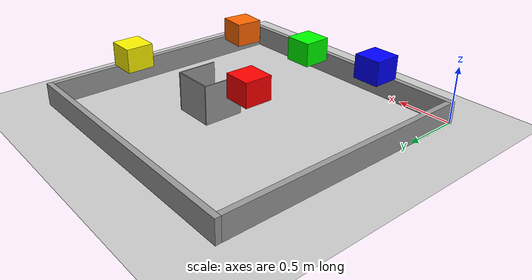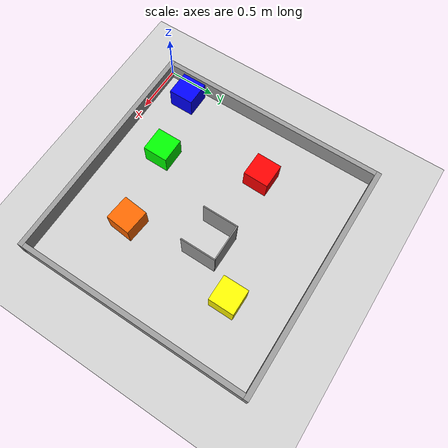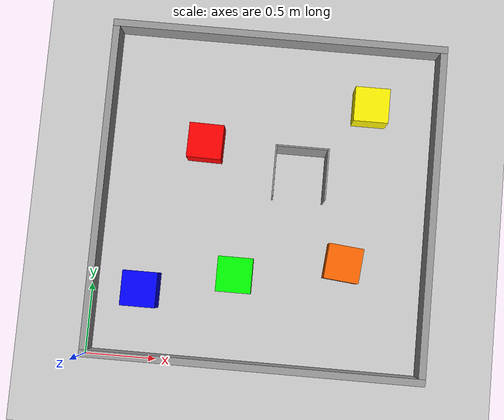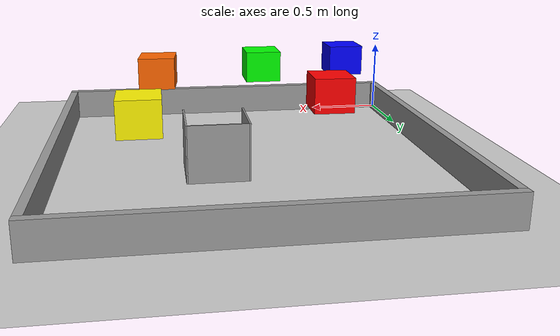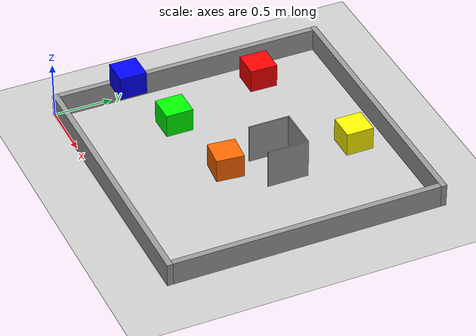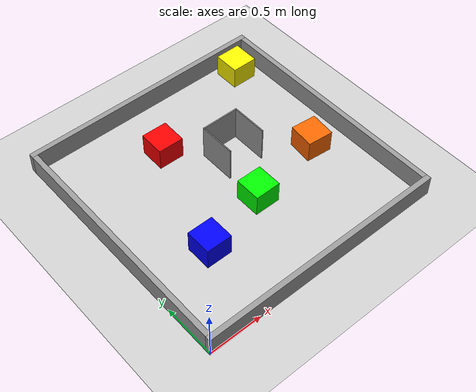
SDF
<sdf version="1.6">
 <world name="default">
  <include><uri>model://sun</uri></include>
  <include><uri>model://ground_plane</uri></include>
  <light name="sun" type="directional">
   <pose>0 0 10 0 -0 0</pose>
   <diffuse>0.8 0.8 0.8 1</diffuse>
   <specular>0.1 0.1 0.1 1</specular>
   <attenuation>
    <range>1000</range>
    <constant>0.9</constant>
    <linear>0.01</linear>
    <quadratic>0.001</quadratic>
   </attenuation>
   <direction>-0.5 0.5 -1</direction>
  </light>
  <model name="ground_plane">
   <static>1</static>
   <link name="link">
    <collision name="collision">
     <geometry><plane><normal>0 0 1</normal><size>100 100</size></plane></geometry>
     <surface><friction><ode><mu>100</mu><mu2>50</mu2></ode></friction></surface>
    </collision>
    <visual name="visual">
     <cast_shadows>0</cast_shadows>
     <geometry><plane><normal>0 0 1</normal><size>100 100</size></plane></geometry>
     <material>
      <script><uri>file://media/materials/scripts/gazebo.material</uri><name>Gazebo/Grey</name></script>
     </material>
    </visual>
   </link>
  </model>
  <gravity>0 0 -9.8</gravity>
  <magnetic_field>6e-06 2.3e-05 -4.2e-05</magnetic_field>
  <atmosphere type="adiabatic"/>
  <physics name="default_physics" default="0" type="ode">
   <max_step_size>0.001</max_step_size>
   <real_time_factor>1</real_time_factor>
   <real_time_update_rate>1000</real_time_update_rate>
  </physics>
  <scene><ambient>0.4 0.4 0.4 1</ambient><background>0.7 0.7 0.7 1</background><shadows>1</shadows></scene>
  <spherical_coordinates>
   <surface_model>EARTH_WGS84</surface_model>
   <latitude_deg>0</latitude_deg>
   <longitude_deg>0</longitude_deg>
   <elevation>0</elevation>
   <heading_deg>0</heading_deg>
  </spherical_coordinates>
  <model name="arenawalls">
   <pose>1.19 1.19053 0 0 -0 0</pose>
   <link name="Wall_0">
    <collision name="Wall_0_Collision">
     <geometry><box><size>2.4 0.05 0.2</size></box></geometry>
     <pose>0 0 0.1 0 -0 0</pose>
    </collision>
    <visual name="Wall_0_Visual">
     <pose>0 0 0.1 0 -0 0</pose>
     <geometry><box><size>2.4 0.05 0.2</size></box></geometry>
     <material>
      <script><uri>file://media/materials/scripts/gazebo.material</uri><name>Gazebo/Grey</name></script>
      <ambient>0 0 0 1</ambient>
     </material>
    </visual>
    <pose>0 -1.175 0 0 -0 0</pose>
   </link>
   <link name="Wall_2">
    <collision name="Wall_2_Collision">
     <geometry><box><size>2.4 0.05 0.2</size></box></geometry>
     <pose>0 0 0.1 0 -0 0</pose>
    </collision>
    <visual name="Wall_2_Visual">
     <pose>0 0 0.1 0 -0 0</pose>
     <geometry><box><size>2.4 0.05 0.2</size></box></geometry>
     <material>
      <script><uri>file://media/materials/scripts/gazebo.material</uri><name>Gazebo/Grey</name></script>
      <ambient>0 0 0 1</ambient>
     </material>
    </visual>
    <pose>0 1.175 0 0 -0 0</pose>
   </link>
   <link name="Wall_4">
    <collision name="Wall_4_Collision">
     <geometry><box><size>2.3 0.05 0.2</size></box></geometry>
     <pose>0 0 0.1 0 -0 0</pose>
    </collision>
    <visual name="Wall_4_Visual">
     <pose>0 0 0.1 0 -0 0</pose>
     <geometry><box><size>2.3 0.05 0.2</size></box></geometry>
     <material>
      <script><uri>file://media/materials/scripts/gazebo.material</uri><name>Gazebo/Grey</name></script>
      <ambient>0 0 0 1</ambient>
     </material>
    </visual>
    <pose>-1.175 0 0 0 -0 1.5708</pose>
   </link>
   <link name="Wall_6">
    <collision name="Wall_6_Collision">
     <geometry><box><size>2.3 0.05 0.2</size></box></geometry>
     <pose>0 0 0.1 0 -0 0</pose>
    </collision>
    <visual name="Wall_6_Visual">
     <pose>0 0 0.1 0 -0 0</pose>
     <geometry><box><size>2.3 0.05 0.2</size></box></geometry>
     <material>
      <script><uri>file://media/materials/scripts/gazebo.material</uri><name>Gazebo/Grey</name></script>
      <ambient>0 0 0 1</ambient>
     </material>
    </visual>
    <pose>1.175 0 0 0 -0 1.5708</pose>
   </link>
   <static>1</static>
  </model>
  <model name="blue_box">
   <link name="link">
    <pose>0.012562 0.027064 -0.381176 0 -0 0</pose>
    <inertial>
     <mass>1</mass>
     <inertia>
      <ixx>0.166667</ixx>
      <ixy>0</ixy>
      <ixz>0</ixz>
      <iyy>0.166667</iyy>
      <iyz>0</iyz>
      <izz>0.166667</izz>
     </inertia>
    </inertial>
    <kinematic>1</kinematic>
    <visual name="visual">
     <geometry><box><size>0.23 0.23 0.2</size></box></geometry>
     <material>
      <script><name>Gazebo/Grey</name><uri>file://media/materials/scripts/gazebo.material</uri></script>
      <ambient>0 0 1 1</ambient>
      <diffuse>0 0 1 1</diffuse>
      <specular>0 0 1 1</specular>
      <emissive>0 0 0 1</emissive>
      <shader type="vertex"><normal_map>__default__</normal_map></shader>
     </material>
    </visual>
    <collision name="collision">
     <geometry><box><size>1 1 1</size></box></geometry>
     <surface>
      <friction>
       <ode><mu>1</mu><mu2>1</mu2><fdir1>0 0 0</fdir1><slip1>0</slip1><slip2>0</slip2></ode>
       <torsional>
        <coefficient>1</coefficient>
        <patch_radius>0</patch_radius>
        <surface_radius>0</surface_radius>
        <use_patch_radius>1</use_patch_radius>
        <ode><slip>0</slip></ode>
       </torsional>
      </friction>
      <bounce><restitution_coefficient>0</restitution_coefficient><threshold>1e+06</threshold></bounce>
      <contact>
       <collide_without_contact>0</collide_without_contact>
       <collide_without_contact_bitmask>1</collide_without_contact_bitmask>
       <collide_bitmask>1</collide_bitmask>
       <ode>
        <soft_cfm>0</soft_cfm>
        <soft_erp>0.2</soft_erp>
        <kp>1e+13</kp>
        <kd>1</kd>
        <max_vel>0.01</max_vel>
        <min_depth>0</min_depth>
       </ode>
       <bullet>
        <split_impulse>1</split_impulse>
        <split_impulse_penetration_threshold>-0.01</split_impulse_penetration_threshold>
        <soft_cfm>0</soft_cfm>
        <soft_erp>0.2</soft_erp>
        <kp>1e+13</kp>
        <kd>1</kd>
       </bullet>
      </contact>
     </surface>
    </collision>
   </link>
   <static>0</static>
   <pose>0.406419 0.469711 0.881176 0 0 -0.000611</pose>
  </model>
  <model name="orange_box_0">
   <link name="link_2">
    <pose>1.27749 -2.40934 -0.387435 0 -0 0</pose>
    <inertial>
     <mass>1</mass>
     <inertia>
      <ixx>0.166667</ixx>
      <ixy>0</ixy>
      <ixz>0</ixz>
      <iyy>0.166667</iyy>
      <iyz>0</iyz>
      <izz>0.166667</izz>
     </inertia>
    </inertial>
    <visual name="visual">
     <geometry><box><size>0.23 0.23 0.2</size></box></geometry>
     <material>
      <lighting>1</lighting>
      <script><uri>file://media/materials/scripts/gazebo.material</uri><name>Gazebo/Grey</name></script>
      <ambient>1 0.4 0 1</ambient>
      <diffuse>1 0.4 0 1</diffuse>
      <specular>1 0.4 0 1</specular>
      <emissive>0 0 0 1</emissive>
      <shader type="vertex"><normal_map>__default__</normal_map></shader>
     </material>
    </visual>
    <collision name="collision">
     <geometry><box><size>1 1 1</size></box></geometry>
     <surface>
      <friction>
       <ode><mu>1</mu><mu2>1</mu2><fdir1>0 0 0</fdir1><slip1>0</slip1><slip2>0</slip2></ode>
       <torsional>
        <coefficient>1</coefficient>
        <patch_radius>0</patch_radius>
        <surface_radius>0</surface_radius>
        <use_patch_radius>1</use_patch_radius>
        <ode><slip>0</slip></ode>
       </torsional>
      </friction>
      <bounce><restitution_coefficient>0</restitution_coefficient><threshold>1e+06</threshold></bounce>
      <contact>
       <collide_without_contact>0</collide_without_contact>
       <collide_without_contact_bitmask>1</collide_without_contact_bitmask>
       <collide_bitmask>1</collide_bitmask>
       <ode>
        <soft_cfm>0</soft_cfm>
        <soft_erp>0.2</soft_erp>
        <kp>1e+13</kp>
        <kd>1</kd>
        <max_vel>0.01</max_vel>
        <min_depth>0</min_depth>
       </ode>
       <bullet>
        <split_impulse>1</split_impulse>
        <split_impulse_penetration_threshold>-0.01</split_impulse_penetration_threshold>
        <soft_cfm>0</soft_cfm>
        <soft_erp>0.2</soft_erp>
        <kp>1e+13</kp>
        <kd>1</kd>
       </bullet>
      </contact>
     </surface>
    </collision>
   </link>
   <static>0</static>
   <pose>0.691605 3.29606 0.887407 -1e-05 -0 -0.096134</pose>
  </model>
  <model name="yellow_box_0">
   <link name="link_3">
    <pose>1.27767 -2.40472 -0.401015 0 -0 0</pose>
    <inertial>
     <mass>1</mass>
     <inertia>
      <ixx>0.166667</ixx>
      <ixy>0</ixy>
      <ixz>0</ixz>
      <iyy>0.166667</iyy>
      <iyz>0</iyz>
      <izz>0.166667</izz>
     </inertia>
    </inertial>
    <visual name="visual">
     <geometry><box><size>0.23 0.23 0.2</size></box></geometry>
     <material>
      <lighting>1</lighting>
      <script><uri>file://media/materials/scripts/gazebo.material</uri><name>Gazebo/Grey</name></script>
      <ambient>1 0.96 0 1</ambient>
      <diffuse>1 0.96 0 1</diffuse>
      <specular>1 0.96 0 1</specular>
      <emissive>0 0 0 1</emissive>
      <shader type="vertex"><normal_map>__default__</normal_map></shader>
     </material>
    </visual>
    <collision name="collision">
     <geometry><box><size>1 1 1</size></box></geometry>
     <surface>
      <friction>
       <ode><mu>1</mu><mu2>1</mu2><fdir1>0 0 0</fdir1><slip1>0</slip1><slip2>0</slip2></ode>
       <torsional>
        <coefficient>1</coefficient>
        <patch_radius>0</patch_radius>
        <surface_radius>0</surface_radius>
        <use_patch_radius>1</use_patch_radius>
        <ode><slip>0</slip></ode>
       </torsional>
      </friction>
      <bounce><restitution_coefficient>0</restitution_coefficient><threshold>1e+06</threshold></bounce>
      <contact>
       <collide_without_contact>0</collide_without_contact>
       <collide_without_contact_bitmask>1</collide_without_contact_bitmask>
       <collide_bitmask>1</collide_bitmask>
       <ode>
        <soft_cfm>0</soft_cfm>
        <soft_erp>0.2</soft_erp>
        <kp>1e+13</kp>
        <kd>1</kd>
        <max_vel>0.01</max_vel>
        <min_depth>0</min_depth>
       </ode>
       <bullet>
        <split_impulse>1</split_impulse>
        <split_impulse_penetration_threshold>-0.01</split_impulse_penetration_threshold>
        <soft_cfm>0</soft_cfm>
        <soft_erp>0.2</soft_erp>
        <kp>1e+13</kp>
        <kd>1</kd>
       </bullet>
      </contact>
     </surface>
    </collision>
   </link>
   <static>0</static>
   <pose>0.556567 4.23966 0.901023 -0 1e-05 0.000711</pose>
  </model>
  <model name="green_box_0">
   <link name="link_1">
    <pose>1.27777 -2.41407 -0.375777 0 -0 0</pose>
    <inertial>
     <mass>1</mass>
     <inertia>
      <ixx>0.166667</ixx>
      <ixy>0</ixy>
      <ixz>0</ixz>
      <iyy>0.166667</iyy>
      <iyz>0</iyz>
      <izz>0.166667</izz>
     </inertia>
    </inertial>
    <visual name="visual">
     <geometry><box><size>0.23 0.23 0.2</size></box></geometry>
     <material>
      <lighting>1</lighting>
      <script><uri>file://media/materials/scripts/gazebo.material</uri><name>Gazebo/Grey</name></script>
      <ambient>1 0 0 1</ambient>
      <diffuse>1 0 0 1</diffuse>
      <specular>1 0 0 1</specular>
      <emissive>0 0 0 1</emissive>
      <shader type="vertex"><normal_map>__default__</normal_map></shader>
     </material>
    </visual>
    <collision name="collision">
     <geometry><box><size>1 1 1</size></box></geometry>
     <surface>
      <friction>
       <ode><mu>1</mu><mu2>1</mu2><fdir1>0 0 0</fdir1><slip1>0</slip1><slip2>0</slip2></ode>
       <torsional>
        <coefficient>1</coefficient>
        <patch_radius>0</patch_radius>
        <surface_radius>0</surface_radius>
        <use_patch_radius>1</use_patch_radius>
        <ode><slip>0</slip></ode>
       </torsional>
      </friction>
      <bounce><restitution_coefficient>0</restitution_coefficient><threshold>1e+06</threshold></bounce>
      <contact>
       <collide_without_contact>0</collide_without_contact>
       <collide_without_contact_bitmask>1</collide_without_contact_bitmask>
       <collide_bitmask>1</collide_bitmask>
       <ode>
        <soft_cfm>0</soft_cfm>
        <soft_erp>0.2</soft_erp>
        <kp>1e+13</kp>
        <kd>1</kd>
        <max_vel>0.01</max_vel>
        <min_depth>0</min_depth>
       </ode>
       <bullet>
        <split_impulse>1</split_impulse>
        <split_impulse_penetration_threshold>-0.01</split_impulse_penetration_threshold>
        <soft_cfm>0</soft_cfm>
        <soft_erp>0.2</soft_erp>
        <kp>1e+13</kp>
        <kd>1</kd>
       </bullet>
      </contact>
     </surface>
    </collision>
   </link>
   <static>0</static>
   <pose>-0.47653 3.93593 0.875796 1e-05 -0 -0.017354</pose>
  </model>
  <model name="ARR">
   <link name="link">
    <pose>0.70771 5.61008 -0 0 -0 0</pose>
    <inertial>
     <mass>1</mass>
     <inertia>
      <ixx>0.166667</ixx>
      <ixy>0</ixy>
      <ixz>0</ixz>
      <iyy>0.166667</iyy>
      <iyz>0</iyz>
      <izz>0.166667</izz>
     </inertia>
    </inertial>
    <self_collide>1</self_collide>
    <kinematic>1</kinematic>
    <visual name="visual">
     <geometry><box><size>0.23 0.23 0.2</size></box></geometry>
     <material>
      <script><name>Gazebo/Grey</name><uri>file://media/materials/scripts/gazebo.material</uri></script>
      <ambient>0 1 0 1</ambient>
      <diffuse>0 1 0 1</diffuse>
      <specular>0 1 0 1</specular>
      <emissive>0 0 0 1</emissive>
      <shader type="vertex"><normal_map>__default__</normal_map></shader>
     </material>
    </visual>
    <collision name="collision">
     <geometry><box><size>1 1 1</size></box></geometry>
     <surface>
      <friction>
       <ode><mu>1</mu><mu2>1</mu2><fdir1>0 0 0</fdir1><slip1>0</slip1><slip2>0</slip2></ode>
       <torsional>
        <coefficient>1</coefficient>
        <patch_radius>0</patch_radius>
        <surface_radius>0</surface_radius>
        <use_patch_radius>1</use_patch_radius>
        <ode><slip>0</slip></ode>
       </torsional>
      </friction>
      <bounce><restitution_coefficient>0</restitution_coefficient><threshold>1e+06</threshold></bounce>
      <contact>
       <collide_without_contact>0</collide_without_contact>
       <collide_without_contact_bitmask>1</collide_without_contact_bitmask>
       <collide_bitmask>1</collide_bitmask>
       <ode>
        <soft_cfm>0</soft_cfm>
        <soft_erp>0.2</soft_erp>
        <kp>1e+13</kp>
        <kd>1</kd>
        <max_vel>0.01</max_vel>
        <min_depth>0</min_depth>
       </ode>
       <bullet>
        <split_impulse>1</split_impulse>
        <split_impulse_penetration_threshold>-0.01</split_impulse_penetration_threshold>
        <soft_cfm>0</soft_cfm>
        <soft_erp>0.2</soft_erp>
        <kp>1e+13</kp>
        <kd>1</kd>
       </bullet>
      </contact>
     </surface>
    </collision>
   </link>
   <static>0</static>
   <pose>0.32076 -4.96958 0.5 0 -0 0</pose>
  </model>
  <model name="Parkingzone">
   <pose>1.40993 1.38226 0 0 -0 0</pose>
   <link name="Wall_0">
    <collision name="Wall_0_Collision">
     <geometry><box><size>0.356 0.01 0.345</size></box></geometry>
     <pose>0 0 0.1725 0 -0 0</pose>
    </collision>
    <visual name="Wall_0_Visual">
     <pose>0 0 0.1725 0 -0 0</pose>
     <geometry><box><size>0.356 0.01 0.345</size></box></geometry>
     <material>
      <script><uri>file://media/materials/scripts/gazebo.material</uri><name>Gazebo/Grey</name></script>
      <ambient>1 1 1 1</ambient>
     </material>
    </visual>
    <pose>-0.1805 0 0 0 -0 1.5708</pose>
   </link>
   <link name="Wall_2">
    <collision name="Wall_2_Collision">
     <geometry><box><size>0.355 0.01 0.345</size></box></geometry>
     <pose>0 0 0.1725 0 -0 0</pose>
    </collision>
    <visual name="Wall_2_Visual">
     <pose>0 0 0.1725 0 -0 0</pose>
     <geometry><box><size>0.355 0.01 0.345</size></box></geometry>
     <material>
      <script><uri>file://media/materials/scripts/gazebo.material</uri><name>Gazebo/Grey</name></script>
      <ambient>1 1 1 1</ambient>
     </material>
    </visual>
    <pose>0.1805 -0.0005 0 0 -0 1.5708</pose>
   </link>
   <link name="Wall_4">
    <collision name="Wall_4_Collision">
     <geometry><box><size>0.355 0.01 0.345</size></box></geometry>
     <pose>0 0 0.1725 0 -0 0</pose>
    </collision>
    <visual name="Wall_4_Visual">
     <pose>0 0 0.1725 0 -0 0</pose>
     <geometry><box><size>0.355 0.01 0.345</size></box></geometry>
     <material>
      <script><uri>file://media/materials/scripts/gazebo.material</uri><name>Gazebo/Grey</name></script>
      <ambient>1 1 1 1</ambient>
     </material>
    </visual>
    <pose>0 0.172 0 0 -0 0</pose>
   </link>
   <static>1</static>
  </model>
 </world>
</sdf>
